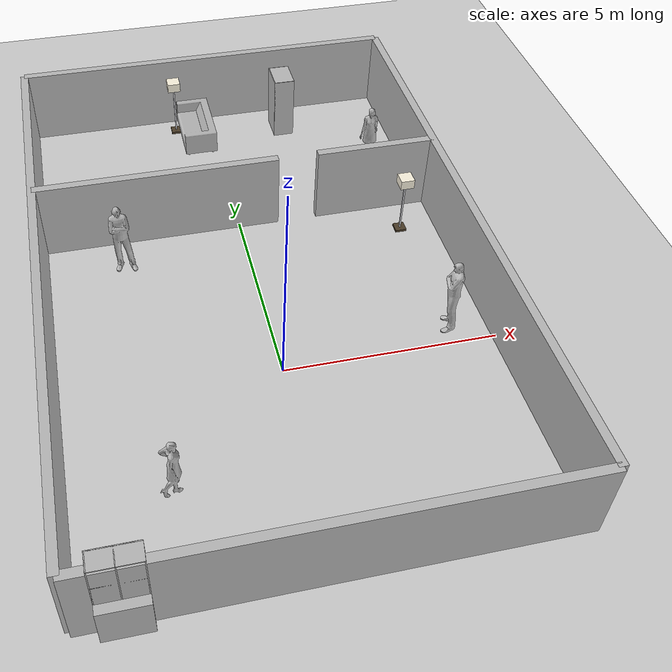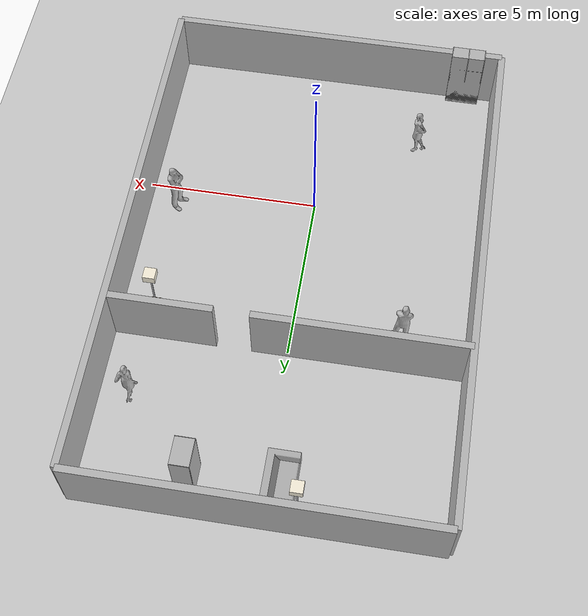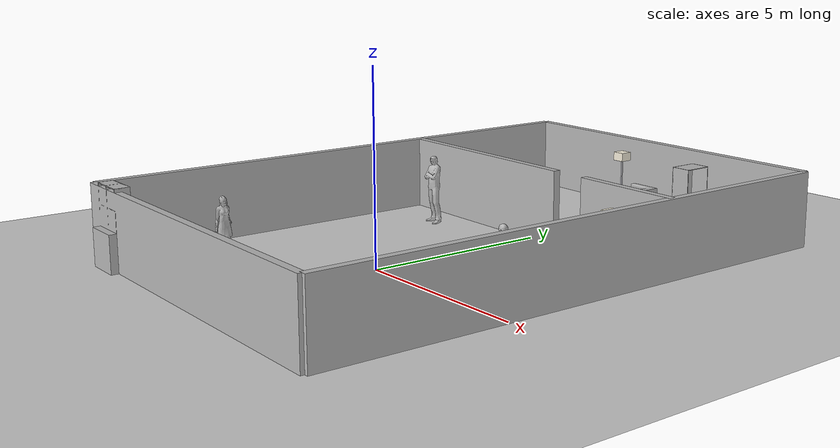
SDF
<sdf version="1.4">
 <world name="default">
  <physics type="ode">
   <gravity>0 0 -9.81</gravity>
   <ode>
    <solver><type>quick</type><iters>20</iters><sor>1.0</sor></solver>
    <constraints>
     <cfm>0.0</cfm>
     <erp>0.2</erp>
     <contact_max_correcting_vel>100.0</contact_max_correcting_vel>
     <contact_surface_layer>0.0</contact_surface_layer>
    </constraints>
   </ode>
   <real_time_update_rate>1000</real_time_update_rate>
   <max_step_size>0.001</max_step_size>
  </physics>
  <include><uri>model://sun</uri></include>
  <include><uri>model://ground_plane</uri></include>
  <model name="wall_1_model">
   <pose>0 -5 1 0 0 0</pose>
   <static>true</static>
   <link name="wall_1_body">
    <inertial>
     <mass>1.0</mass>
     <inertia><ixx>1.0</ixx><ixy>0.0</ixy><ixz>0.0</ixz><iyy>1.0</iyy><iyz>0.0</iyz><izz>1.0</izz></inertia>
    </inertial>
    <collision name="collision"><geometry><box><size>10 0.2 2</size></box></geometry></collision>
    <visual name="visual"><geometry><box><size>10 0.2 2</size></box></geometry></visual>
   </link>
  </model>
  <model name="wall_2_model">
   <pose>0 10 1 0 0 0</pose>
   <static>true</static>
   <link name="wall_2_body">
    <inertial>
     <mass>1.0</mass>
     <inertia><ixx>1.0</ixx><ixy>0.0</ixy><ixz>0.0</ixz><iyy>1.0</iyy><iyz>0.0</iyz><izz>1.0</izz></inertia>
    </inertial>
    <collision name="collision"><geometry><box><size>10 0.2 2</size></box></geometry></collision>
    <visual name="visual"><geometry><box><size>10 0.2 2</size></box></geometry></visual>
   </link>
  </model>
  <model name="wall_3_model">
   <pose>-5 2.5 1 0 0 0</pose>
   <static>true</static>
   <link name="wall_3_body">
    <inertial>
     <mass>1.0</mass>
     <inertia><ixx>1.0</ixx><ixy>0.0</ixy><ixz>0.0</ixz><iyy>1.0</iyy><iyz>0.0</iyz><izz>1.0</izz></inertia>
    </inertial>
    <collision name="collision"><geometry><box><size>0.2 15 2</size></box></geometry></collision>
    <visual name="visual"><geometry><box><size>0.2 15 2</size></box></geometry></visual>
   </link>
  </model>
  <model name="wall_4_model">
   <pose>5 2.5 1 0 0 0</pose>
   <static>true</static>
   <link name="wall_4_body">
    <inertial>
     <mass>1.0</mass>
     <inertia><ixx>1.0</ixx><ixy>0.0</ixy><ixz>0.0</ixz><iyy>1.0</iyy><iyz>0.0</iyz><izz>1.0</izz></inertia>
    </inertial>
    <collision name="collision"><geometry><box><size>0.2 15 2</size></box></geometry></collision>
    <visual name="visual"><geometry><box><size>0.2 15 2</size></box></geometry></visual>
   </link>
  </model>
  <model name="wall_5_model">
   <pose>-2 5 1 0 0 0</pose>
   <static>true</static>
   <link name="wall_5_body">
    <inertial>
     <mass>1.0</mass>
     <inertia><ixx>1.0</ixx><ixy>0.0</ixy><ixz>0.0</ixz><iyy>1.0</iyy><iyz>0.0</iyz><izz>1.0</izz></inertia>
    </inertial>
    <collision name="collision"><geometry><box><size>6 0.2 2</size></box></geometry></collision>
    <visual name="visual"><geometry><box><size>6 0.2 2</size></box></geometry></visual>
   </link>
  </model>
  <model name="wall_6_model">
   <pose>3.5 5 1 0 0 0</pose>
   <static>true</static>
   <link name="wall_6_body">
    <inertial>
     <mass>1.0</mass>
     <inertia><ixx>1.0</ixx><ixy>0.0</ixy><ixz>0.0</ixz><iyy>1.0</iyy><iyz>0.0</iyz><izz>1.0</izz></inertia>
    </inertial>
    <collision name="collision"><geometry><box><size>3 0.2 2</size></box></geometry></collision>
    <visual name="visual"><geometry><box><size>3 0.2 2</size></box></geometry></visual>
   </link>
  </model>
  <include>
   <uri>model://wardrobe</uri>
   <pose>2.000000 9.000000 0.000000 0.000000 0.000000 0.000000</pose>
  </include>
  <include>
   <uri>model://closet</uri>
   <pose>-4.000000 -5.000000 0.000000 0.000000 0.000000 0.000000</pose>
  </include>
  <include><uri>model://sofa</uri><pose>-0.518195 9.000000 0.000000 0.000000 0.000000 0.000000</pose></include>
  <include>
   <name>floor_lamp_0</name>
   <uri>model://floor_lamp</uri>
   <pose>-1.000000 9.417350 0.000000 0.000000 0.000000 0.000000</pose>
  </include>
  <include>
   <name>floor_lamp_1</name>
   <uri>model://floor_lamp</uri>
   <pose>4.000000 4.00000 0.000000 0.000000 0.000000 0.000000</pose>
  </include>
  <include>
   <name>male03</name>
   <uri>model://citizen_extras_male_03</uri>
   <pose>4.0 0.53 0.01 0.0125 0.0023 -1.718</pose>
  </include>
  <light type="point" name="male03light">
   <pose>3.6 0.53 1.6 0 0 0</pose>
   <diffuse>0.5 0.5 0.5 1</diffuse>
   <specular>0.1 0.1 0.1 1</specular>
   <attenuation>
    <range>1.0</range>
    <linear>0.01</linear>
    <constant>0.3</constant>
    <quadratic>0.0</quadratic>
   </attenuation>
   <direction>0 0 -1</direction>
   <spot><inner_angle>0.6</inner_angle><outer_angle>0.8</outer_angle><falloff>1.2</falloff></spot>
   <cast_shadows>false</cast_shadows>
  </light>
  <include>
   <name>female02</name>
   <uri>model://citizen_extras_female_02</uri>
   <pose>-2.84 -2.63 0.01 0 -0.025 1.683</pose>
  </include>
  <light type="point" name="female02light">
   <pose>-2.5 -2.63 1.5 0 0 0</pose>
   <diffuse>0.5 0.5 0.5 1</diffuse>
   <specular>0.1 0.1 0.1 1</specular>
   <attenuation>
    <range>1.0</range>
    <linear>0.01</linear>
    <constant>0.3</constant>
    <quadratic>0.0</quadratic>
   </attenuation>
   <direction>0 0 -1</direction>
   <spot><inner_angle>0.6</inner_angle><outer_angle>0.8</outer_angle><falloff>1.2</falloff></spot>
   <cast_shadows>false</cast_shadows>
  </light>
  <light type="point" name="female03light">
   <pose>-3.0 6.2 1.5 0 0 0</pose>
   <diffuse>0.5 0.5 0.5 1</diffuse>
   <specular>0.1 0.1 0.1 1</specular>
   <attenuation>
    <range>1.0</range>
    <linear>0.01</linear>
    <constant>0.3</constant>
    <quadratic>0.0</quadratic>
   </attenuation>
   <direction>0 0 -1</direction>
   <spot><inner_angle>0.6</inner_angle><outer_angle>0.8</outer_angle><falloff>1.2</falloff></spot>
   <cast_shadows>false</cast_shadows>
  </light>
  <include>
   <name>female02bis</name>
   <uri>model://citizen_extras_female_02</uri>
   <pose>4.000000 7.000000 0.000000 0.000000 0.000000 0.000000</pose>
  </include>
  <light type="point" name="female02bislight">
   <pose>3.8 6.7 1.5 0 0 0</pose>
   <diffuse>0.5 0.5 0.5 1</diffuse>
   <specular>0.1 0.1 0.1 1</specular>
   <attenuation>
    <range>1.0</range>
    <linear>0.01</linear>
    <constant>0.3</constant>
    <quadratic>0.0</quadratic>
   </attenuation>
   <direction>0 0 -1</direction>
   <spot><inner_angle>0.6</inner_angle><outer_angle>0.8</outer_angle><falloff>1.2</falloff></spot>
   <cast_shadows>false</cast_shadows>
  </light>
  <include>
   <name>male03bis</name>
   <uri>model://citizen_extras_male_03</uri>
   <pose>-3.000000 4.000000 0.000000 0.000000 0.000000 0.000000</pose>
  </include>
  <light type="point" name="male03bislight">
   <pose>-2.9 3.7 1.5 0 0 0</pose>
   <diffuse>0.5 0.5 0.5 1</diffuse>
   <specular>0.1 0.1 0.1 1</specular>
   <attenuation>
    <range>1.0</range>
    <linear>0.01</linear>
    <constant>0.3</constant>
    <quadratic>0.0</quadratic>
   </attenuation>
   <direction>0 0 -1</direction>
   <spot><inner_angle>0.6</inner_angle><outer_angle>0.8</outer_angle><falloff>1.2</falloff></spot>
   <cast_shadows>false</cast_shadows>
  </light>
 </world>
</sdf>

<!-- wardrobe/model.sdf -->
<sdf version="1.6">
  <model name="rwc2022/wardrobe">
    <static>true</static>
    <link name="1_link">
      <collision name="1_col">
        <geometry>
          <box>
            <size>0.55 0.015 1.76</size>
          </box>
        </geometry>
      </collision>
      <visual name="1_vis">
        <geometry>
          <box>
            <size>0.55 0.015 1.76</size>
          </box>
        </geometry>
      </visual>
      <pose>0.0 -0.39 0.88 0 0 0</pose>
    </link>
    <link name="2_link">
      <collision name="2_col">
        <geometry>
          <box>
            <size>0.55 0.015 1.76</size>
          </box>
        </geometry>
      </collision>
      <visual name="2_vis">
        <geometry>
          <box>
            <size>0.55 0.015 1.76</size>
          </box>
        </geometry>
      </visual>
      <pose>0.0 0.39 0.88 0 0 0</pose>
    </link>
    <link name="3_link">
      <collision name="3_col">
        <geometry>
          <box>
            <size>0.015 0.795 1.76</size>
          </box>
        </geometry>
      </collision>
      <visual name="3_vis">
        <geometry>
          <box>
            <size>0.015 0.795 1.76</size>
          </box>
        </geometry>
      </visual>
      <pose>-0.2675 0.0 0.88 0 0 0</pose>
    </link>
    <link name="4_link">
      <collision name="4_col">
        <geometry>
          <box>
            <size>0.535 0.765 0.015</size>
          </box>
        </geometry>
      </collision>
      <visual name="4_vis">
        <geometry>
          <box>
            <size>0.535 0.765 0.015</size>
          </box>
        </geometry>
      </visual>
      <pose>0.0075 0.0 1.7525 0 0 0</pose>
    </link>
    <link name="5_link">
      <collision name="5_col">
        <geometry>
          <box>
            <size>0.535 0.765 0.02</size>
          </box>
        </geometry>
      </collision>
      <visual name="5_vis">
        <geometry>
          <box>
            <size>0.535 0.765 0.02</size>
          </box>
        </geometry>
      </visual>
      <pose>0.0075 0.0 0.455 0 0 0</pose>
    </link>
    <link name="6_link">
      <collision name="6_col">
        <geometry>
          <box>
            <size>0.535 0.765 0.02</size>
          </box>
        </geometry>
      </collision>
      <visual name="6_vis">
        <geometry>
          <box>
            <size>0.535 0.765 0.02</size>
          </box>
        </geometry>
      </visual>
      <pose>0.0075 0.0 0.095 0 0 0</pose>
    </link>
    <link name="7_link">
      <collision name="7_col">
        <geometry>
          <box>
            <size>0.02 0.77 0.9</size>
          </box>
        </geometry>
      </collision>
      <visual name="7_vis">
        <geometry>
          <box>
            <size>0.02 0.77 0.09</size>
          </box>
        </geometry>
      </visual>
      <pose>0.26 0.0 0.045 0 0 0</pose>
    </link>
    <link name="in_front_of">
      <virtual_volume name="in_front_of_vv">
        <geometry>
          <box>
            <size>0.2 0.2975 0.01</size>
          </box>
        </geometry>
        <pose>0.775 0.0 0.005 0 0 0</pose>
      </virtual_volume>
    </link>
    <link name="shelf1">
      <virtual_volume name="shelf1_vv">
        <geometry>
          <box>
            <size>0.515 0.705 0.25</size>
          </box>
        </geometry>
        <pose>0.0075 0.0 0.25 0 0 0</pose>
      </virtual_volume>
    </link>
    <link name="shelf2">
      <virtual_volume name="shelf2_vv">
        <geometry>
          <box>
            <size>0.515 0.705 0.25</size>
          </box>
        </geometry>
        <pose>0.0075 0.0 0.61 0 0 0</pose>
      </virtual_volume>
    </link>
    <link name="on_top_of">
      <virtual_volume name="on_top_of_vv">
        <geometry>
          <box>
            <size>0.515 0.705 0.25</size>
          </box>
        </geometry>
        <pose>0.0075 0.0 0.61 0 0 0</pose>
      </virtual_volume>
    </link>
  </model>
</sdf>

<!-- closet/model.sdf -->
<sdf version="1.6">
  <model name="reo2016/closet">
    <link name="1_link">
      <collision name="1_col">
        <geometry>
          <box>
            <size>1.0 0.6 0.995</size>
          </box>
        </geometry>
      </collision>
      <visual name="1_vis">
        <geometry>
          <box>
            <size>1.0 0.6 0.995</size>
          </box>
        </geometry>
      </visual>
      <pose>0 0 0.4975 0 0 0</pose>
    </link>
    <link name="2_link">
      <collision name="2_col">
        <geometry>
          <box>
            <size>0.022 0.4 1.1</size>
          </box>
        </geometry>
      </collision>
      <visual name="2_vis">
        <geometry>
          <box>
            <size>0.022 0.4 1.1</size>
          </box>
        </geometry>
      </visual>
      <pose>-0.489 0.1 1.545 0 0 0</pose>
    </link>
    <link name="3_link">
      <collision name="3_col">
        <geometry>
          <box>
            <size>0.022 0.4 1.1</size>
          </box>
        </geometry>
      </collision>
      <visual name="3_vis">
        <geometry>
          <box>
            <size>0.022 0.4 1.1</size>
          </box>
        </geometry>
      </visual>
      <pose>0.0 0.1 1.545 0 0 0</pose>
    </link>
    <link name="4_link">
      <collision name="4_col">
        <geometry>
          <box>
            <size>0.022 0.4 1.1</size>
          </box>
        </geometry>
      </collision>
      <visual name="4_vis">
        <geometry>
          <box>
            <size>0.022 0.4 1.1</size>
          </box>
        </geometry>
      </visual>
      <pose>0.489 0.1 1.545 0 0 0</pose>
    </link>
    <link name="5_link">
      <collision name="5_col">
        <geometry>
          <box>
            <size>1.0 0.4 0.022</size>
          </box>
        </geometry>
      </collision>
      <visual name="5_vis">
        <geometry>
          <box>
            <size>1.0 0.4 0.022</size>
          </box>
        </geometry>
      </visual>
      <pose>0.0 0.1 1.541 0 0 0</pose>
    </link>
    <link name="6_link">
      <collision name="6_col">
        <geometry>
          <box>
            <size>1.0 0.4 0.022</size>
          </box>
        </geometry>
      </collision>
      <visual name="6_vis">
        <geometry>
          <box>
            <size>1.0 0.4 0.022</size>
          </box>
        </geometry>
      </visual>
      <pose>0.0 0.1 2.084 0 0 0</pose>
    </link>
    <link name="7_link">
      <collision name="7_col">
        <geometry>
          <box>
            <size>1.0 0.022 2.095</size>
          </box>
        </geometry>
      </collision>
      <visual name="7_vis">
        <geometry>
          <box>
            <size>1.0 0.022 2.095</size>
          </box>
        </geometry>
      </visual>
      <pose>0.0 0.289 1.0475 0 0 0</pose>
    </link>
    <link name="on_top_of">
      <virtual_volume name="on_top_of_vv">
        <geometry>
          <box>
            <size>1.0 0.55 0.215</size>
          </box>
        </geometry>
        <pose>0.0 0.025 1.1425 0 0 0</pose>
      </virtual_volume>
    </link>
    <link name="in_front_of">
      <virtual_volume name="in_front_of_vv">
        <geometry>
          <box>
            <size>1.0 0.2 0.01</size>
          </box>
        </geometry>
        <pose>0.0 -1.0 0.005 0 0 0</pose>
      </virtual_volume>
    </link>
    <static>true</static>
  </model>
</sdf>

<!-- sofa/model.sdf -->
<sdf version='1.6'>
  <model name='sofa'>
    <link name='link_0'>
      <pose frame=''>0 0 0 0 -0 0</pose>
      <inertial>
        <mass>20</mass>
        <pose frame=''>0.05 0.02 0.35 0 0 0</pose>
        <inertia>
          <ixx>6.5189973924</ixx>
          <ixy>0</ixy>
          <ixz>0</ixz>
          <iyy>2.3789990484</iyy>
          <iyz>0</iyz>
          <izz>7.0229971908</izz>
        </inertia>
      </inertial>
      <visual name='visual'>
        <pose frame=''>0 0 0 0 -0 0</pose>
        <geometry>
          <mesh>
            <uri>file://isr-testbed/sofa/sofa.dae</uri>
            <scale>1 1 1</scale>
          </mesh>
        </geometry>
        <material>
          <lighting>1</lighting>
          <script>
            <uri>file://media/materials/scripts/gazebo.material</uri>
            <name>Gazebo/DepthMapVS</name>
          </script>
          <ambient>0.3 0.3 0.3 1</ambient>
          <diffuse>0.7 0.7 0.7 1</diffuse>
          <specular>0.01 0.01 0.01 1</specular>
          <emissive>0 0 0 1</emissive>
        </material>
        <cast_shadows>1</cast_shadows>
        <transparency>0</transparency>
      </visual>
      <collision name='collision'>
        <laser_retro>0</laser_retro>
        <max_contacts>10</max_contacts>
        <pose frame=''>0.05 0 0.2 0 0 0</pose>
        <geometry>
          <box>
            <size>0.93 1.83 0.37</size>
          </box>
        </geometry>
        <surface>
          <friction>
            <ode>
              <mu>1</mu>
              <mu2>1</mu2>
              <fdir1>0 0 0</fdir1>
              <slip1>0</slip1>
              <slip2>0</slip2>
            </ode>
            <torsional>
              <coefficient>1</coefficient>
              <patch_radius>0</patch_radius>
              <surface_radius>0</surface_radius>
              <use_patch_radius>1</use_patch_radius>
              <ode>
                <slip>0</slip>
              </ode>
            </torsional>
          </friction>
          <bounce>
            <restitution_coefficient>0</restitution_coefficient>
            <threshold>1e+06</threshold>
          </bounce>
          <contact>
            <collide_without_contact>0</collide_without_contact>
            <collide_without_contact_bitmask>1</collide_without_contact_bitmask>
            <collide_bitmask>1</collide_bitmask>
            <ode>
              <soft_cfm>0</soft_cfm>
              <soft_erp>0.2</soft_erp>
              <kp>1e+13</kp>
              <kd>1</kd>
              <max_vel>0.01</max_vel>
              <min_depth>0</min_depth>
            </ode>
            <bullet>
              <split_impulse>1</split_impulse>
              <split_impulse_penetration_threshold>-0.01</split_impulse_penetration_threshold>
              <soft_cfm>0</soft_cfm>
              <soft_erp>0.2</soft_erp>
              <kp>1e+13</kp>
              <kd>1</kd>
            </bullet>
          </contact>
        </surface>
      </collision>
      <collision name='collision_back'>
        <laser_retro>0</laser_retro>
        <max_contacts>10</max_contacts>
        <pose frame=''>0.35 0 0.5 0 0 0</pose>
        <geometry>
          <box>
            <size>0.3 1.83 0.5</size>
          </box>
        </geometry>
        <surface>
          <friction>
            <ode>
              <mu>1</mu>
              <mu2>1</mu2>
              <fdir1>0 0 0</fdir1>
              <slip1>0</slip1>
              <slip2>0</slip2>
            </ode>
            <torsional>
              <coefficient>1</coefficient>
              <patch_radius>0</patch_radius>
              <surface_radius>0</surface_radius>
              <use_patch_radius>1</use_patch_radius>
              <ode>
                <slip>0</slip>
              </ode>
            </torsional>
          </friction>
          <bounce>
            <restitution_coefficient>0</restitution_coefficient>
            <threshold>1e+06</threshold>
          </bounce>
          <contact>
            <collide_without_contact>0</collide_without_contact>
            <collide_without_contact_bitmask>1</collide_without_contact_bitmask>
            <collide_bitmask>1</collide_bitmask>
            <ode>
              <soft_cfm>0</soft_cfm>
              <soft_erp>0.2</soft_erp>
              <kp>1e+13</kp>
              <kd>1</kd>
              <max_vel>0.01</max_vel>
              <min_depth>0</min_depth>
            </ode>
            <bullet>
              <split_impulse>1</split_impulse>
              <split_impulse_penetration_threshold>-0.01</split_impulse_penetration_threshold>
              <soft_cfm>0</soft_cfm>
              <soft_erp>0.2</soft_erp>
              <kp>1e+13</kp>
              <kd>1</kd>
            </bullet>
          </contact>
        </surface>
      </collision>
      <collision name='collision_arm_left'>
        <laser_retro>0</laser_retro>
        <max_contacts>10</max_contacts>
        <pose frame=''>0 -0.8 0.5 0 0 0</pose>
        <geometry>
          <box>
            <size>0.8 0.25 0.5</size>
          </box>
        </geometry>
        <surface>
          <friction>
            <ode>
              <mu>1</mu>
              <mu2>1</mu2>
              <fdir1>0 0 0</fdir1>
              <slip1>0</slip1>
              <slip2>0</slip2>
            </ode>
            <torsional>
              <coefficient>1</coefficient>
              <patch_radius>0</patch_radius>
              <surface_radius>0</surface_radius>
              <use_patch_radius>1</use_patch_radius>
              <ode>
                <slip>0</slip>
              </ode>
            </torsional>
          </friction>
          <bounce>
            <restitution_coefficient>0</restitution_coefficient>
            <threshold>1e+06</threshold>
          </bounce>
          <contact>
            <collide_without_contact>0</collide_without_contact>
            <collide_without_contact_bitmask>1</collide_without_contact_bitmask>
            <collide_bitmask>1</collide_bitmask>
            <ode>
              <soft_cfm>0</soft_cfm>
              <soft_erp>0.2</soft_erp>
              <kp>1e+13</kp>
              <kd>1</kd>
              <max_vel>0.01</max_vel>
              <min_depth>0</min_depth>
            </ode>
            <bullet>
              <split_impulse>1</split_impulse>
              <split_impulse_penetration_threshold>-0.01</split_impulse_penetration_threshold>
              <soft_cfm>0</soft_cfm>
              <soft_erp>0.2</soft_erp>
              <kp>1e+13</kp>
              <kd>1</kd>
            </bullet>
          </contact>
        </surface>
      </collision>
      <collision name='collision_arm_right'>
        <laser_retro>0</laser_retro>
        <max_contacts>10</max_contacts>
        <pose frame=''>0 0.8 0.5 0 0 0</pose>
        <geometry>
          <box>
            <size>0.8 0.25 0.5</size>
          </box>
        </geometry>
        <surface>
          <friction>
            <ode>
              <mu>1</mu>
              <mu2>1</mu2>
              <fdir1>0 0 0</fdir1>
              <slip1>0</slip1>
              <slip2>0</slip2>
            </ode>
            <torsional>
              <coefficient>1</coefficient>
              <patch_radius>0</patch_radius>
              <surface_radius>0</surface_radius>
              <use_patch_radius>1</use_patch_radius>
              <ode>
                <slip>0</slip>
              </ode>
            </torsional>
          </friction>
          <bounce>
            <restitution_coefficient>0</restitution_coefficient>
            <threshold>1e+06</threshold>
          </bounce>
          <contact>
            <collide_without_contact>0</collide_without_contact>
            <collide_without_contact_bitmask>1</collide_without_contact_bitmask>
            <collide_bitmask>1</collide_bitmask>
            <ode>
              <soft_cfm>0</soft_cfm>
              <soft_erp>0.2</soft_erp>
              <kp>1e+13</kp>
              <kd>1</kd>
              <max_vel>0.01</max_vel>
              <min_depth>0</min_depth>
            </ode>
            <bullet>
              <split_impulse>1</split_impulse>
              <split_impulse_penetration_threshold>-0.01</split_impulse_penetration_threshold>
              <soft_cfm>0</soft_cfm>
              <soft_erp>0.2</soft_erp>
              <kp>1e+13</kp>
              <kd>1</kd>
            </bullet>
          </contact>
        </surface>
      </collision>
    </link>
    <static>0</static>
    <allow_auto_disable>1</allow_auto_disable>
  </model>
</sdf>

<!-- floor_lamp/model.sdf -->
<sdf version="1.9">
  <model name="floor_lamp">
    <static>true</static>
    <link name="body">

      <collision name="base_collision">
        <pose>0 0 0.03 0 0 0</pose>
        <geometry><box><size>0.28 0.28 0.06</size></box></geometry>
      </collision>
      <collision name="stem_collision">
        <pose>0 0 0.80 0 0 0</pose>
        <geometry><box><size>0.04 0.04 1.50</size></box></geometry>
      </collision>
      <collision name="shade_collision">
        <pose>0 0 1.55 0 0 0</pose>
        <geometry><box><size>0.34 0.34 0.24</size></box></geometry>
      </collision>
      <visual name="base_visual">
        <pose>0 0 0.03 0 0 0</pose>
        <geometry><box><size>0.28 0.28 0.06</size></box></geometry>
        <material>
          <ambient>0.20 0.16 0.11 1</ambient>
          <diffuse>0.30 0.24 0.16 1</diffuse>
        </material>
      </visual>

      <visual name="stem_visual">
        <pose>0 0 0.80 0 0 0</pose>
        <geometry><box><size>0.04 0.04 1.50</size></box></geometry>
        <material><ambient>0.62 0.62 0.63 1</ambient><diffuse>0.78 0.78 0.80 1</diffuse></material>
      </visual>
      <visual name="shade_visual">
        <pose>0 0 1.55 0 0 0</pose>
        <geometry><box><size>0.34 0.34 0.24</size></box></geometry>
        <material><ambient>0.92 0.89 0.80 1</ambient><diffuse>0.98 0.95 0.87 1</diffuse></material>
      </visual>

    </link>
  </model>
</sdf>

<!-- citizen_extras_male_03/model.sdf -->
<sdf version="1.4">

 <model name="citizen_extras_male_03">

    <link name="link">

     <inertial>

       <mass>20</mass>

       <inertia>

         <ixx>0.0</ixx>

         <ixy>0.0</ixy>

         <ixz>0.0</ixz>

         <iyy>0.0</iyy>

         <iyz>0.0</iyz>

         <izz>0.0</izz>

       </inertia>

     </inertial>

     <collision name="collision">

       <pose>0 0 0 0 0 0</pose>

       <geometry>

         <mesh>

           <uri>model://citizen_extras_male_03/meshes/mesh.dae</uri>

         </mesh>

       </geometry>

     </collision>

     <visual name="visual">

       <pose>0 0 0 0 0 0</pose>

       <geometry>

         <mesh>

           <uri>model://citizen_extras_male_03/meshes/mesh.dae</uri>

         </mesh>

       </geometry>

     </visual>

    </link>

 </model>
</sdf>

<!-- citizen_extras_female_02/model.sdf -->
<sdf version="1.4">

 <model name="citizen_extras_female_02">

    <link name="link">

     <inertial>

       <mass>20</mass>

       <inertia>

         <ixx>0.0</ixx>

         <ixy>0.0</ixy>

         <ixz>0.0</ixz>

         <iyy>0.0</iyy>

         <iyz>0.0</iyz>

         <izz>0.0</izz>

       </inertia>

     </inertial>

     <collision name="collision">

       <pose>0 0 0 0 0 0</pose>

       <geometry>

         <mesh>

           <uri>model://citizen_extras_female_02/meshes/mesh.dae</uri>

         </mesh>

       </geometry>

     </collision>

     <visual name="visual">

       <pose>0 0 0 0 0 0</pose>

       <geometry>

         <mesh>

           <uri>model://citizen_extras_female_02/meshes/mesh.dae</uri>

         </mesh>

       </geometry>

     </visual>

    </link>

 </model>
</sdf>
